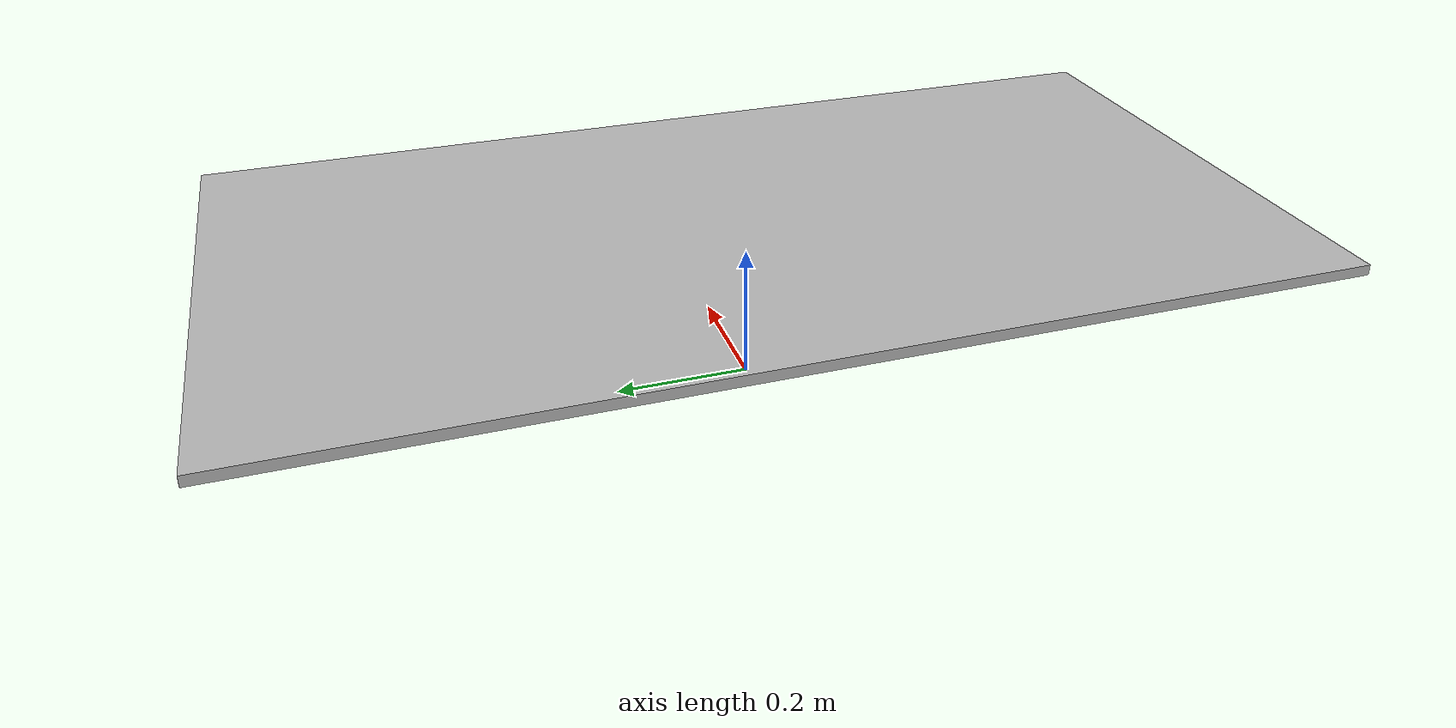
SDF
<?xml version="1.0"?>
<sdf version="1.7">
  <model name="table">
    <link name="ground">
      <pose>0.0 0.0 0.25 0 0 0</pose>
      <visual name="visual">
        <geometry>
          <box>
            <size>0.8 1.5 0.015</size>
          </box>
        </geometry>
      </visual>
      <collision name="collision">
        <geometry>
          <box>
            <size>0.8 1.5 0.015</size>
          </box>
        </geometry>
        <drake:proximity_properties>
          <drake:point_contact_stiffness>
            20000
          </drake:point_contact_stiffness>
          <drake:hunt_crossley_dissipation>
            0.1
          </drake:hunt_crossley_dissipation>
        </drake:proximity_properties>
      </collision>
    </link>
    <joint name="ground_weld" type="fixed">
      <parent>world</parent>
      <child>ground</child>
      <pose>0 0 0 0 0 0</pose>
    </joint>
  </model>
</sdf>
